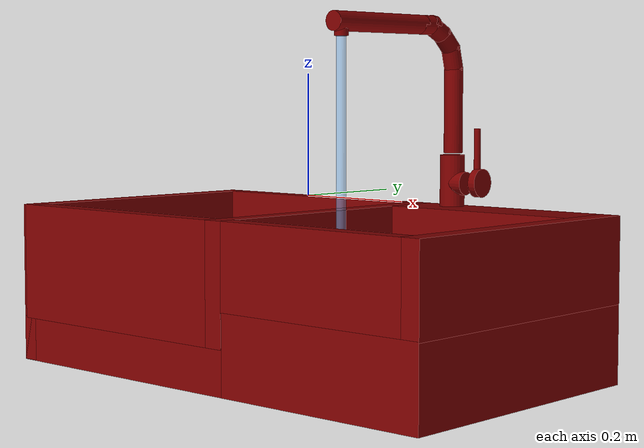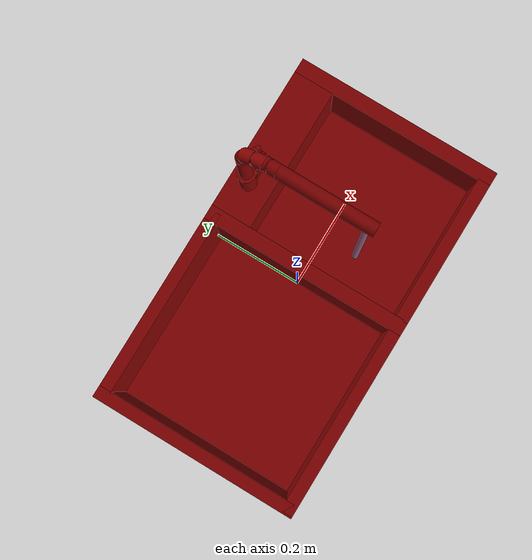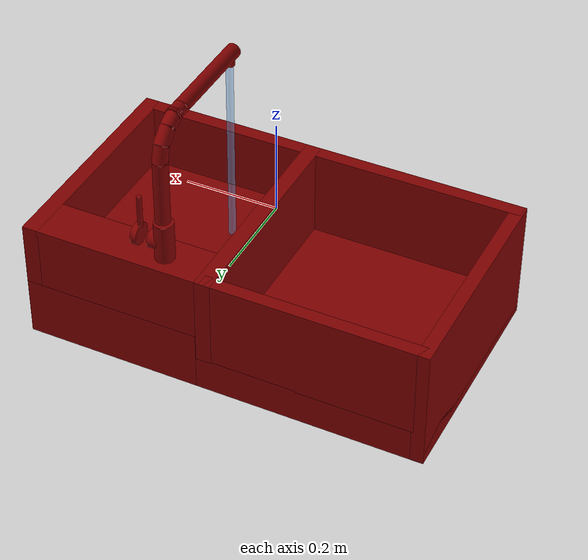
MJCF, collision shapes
<?xml version='1.0' encoding='UTF-8'?>
<mujoco model="model">
  <option timestep="0.002" gravity="0.0 0.0 -9.81"/>
  <compiler angle="radian"/>
  <asset>
    <mesh file="visuals/handle.obj" name="handle_vis"/>
    <mesh file="visuals/Body001.obj" name="Body001_vis"/>
    <mesh file="visuals/spout.obj" name="spout_vis"/>
    <texture file="visuals/T_BC001.png" name="Body001_material" type="2d"/>
    <material name="Body001_material" rgba="1 1 1 1.0" texture="Body001_material" shininess="0.1" specular="2"/>
    <texture file="visuals/T_BC001.png" name="handle_material" type="2d"/>
    <material name="handle_material" rgba="1 1 1 1.0" texture="handle_material" shininess="0.1" specular="1"/>
    <texture file="visuals/T_BC001.png" name="spout_material" type="2d"/>
    <material name="spout_material" rgba="1 1 1 1.0" texture="spout_material" shininess="0.1" specular="2"/>
  </asset>
  <default>
    <default class="visual">
      <geom conaffinity="0" contype="0" group="1" type="mesh"/>
    </default>
    <default class="collision">
      <geom group="0" rgba="0.5 0 0 0.5" solimp="0.998 0.998 0.001" solref="0.001 2"/>
    </default>
    <default class="spawn">
      <geom group="0" rgba="1 1 1 0.5" contype="0" conaffinity="0"/>
      <site group="0" rgba="1 1 1 0.5"/>
    </default>
    <default class="region">
      <geom group="1" conaffinity="0" contype="0" rgba="0 1 0 0"/>
    </default>
  </default>
  <worldbody>
    <body>
      <body name="object">
        <geom mesh="Body001_vis" type="mesh" solimp="0.998 0.998 0.001" solref="0.001 1" friction="0.95 0.3 0.1" class="visual" material="Body001_material"/>
        <geom class="collision" type="box" pos="-0.42469963 0.00000002 -0.15824787" size="0.014377672225236893 0.2513290047645569 0.13487377762794495" quat="1.0 0.0 0.0 0.0"/>
        <geom class="collision" type="box" pos="0.03584970 0.00000004 -0.12194033" size="0.017109353095293045 0.2513291835784912 0.09856623411178589" quat="1.0 0.0 0.0 0.0"/>
        <geom class="collision" type="box" pos="0.42169857 -0.00000002 -0.09409502" size="0.017378712072968483 0.25132888555526733 0.07072102278470993" quat="1.0 0.0 0.0 0.0"/>
        <geom class="collision" type="box" pos="0.24656376 -0.00000000 -0.22840064" size="0.19251343607902527 0.25132912397384644 0.06549276411533356" quat="1.0 0.0 0.0 0.0"/>
        <geom class="collision" type="box" pos="-0.19257656 -0.00000001 -0.25569155" size="0.24650071561336517 0.2513289451599121 0.03820173814892769" quat="1.0 0.0 0.0 0.0"/>
        <geom class="collision" type="box" pos="-0.19629988 0.23687601 -0.12194034" size="0.23859663307666779 0.014452969655394554 0.0985662192106247" quat="1.0 0.0 0.0 0.0"/>
        <geom class="collision" type="box" pos="-0.19629988 -0.23660257 -0.12194034" size="0.23859667778015137 0.014726434834301472 0.0985662192106247" quat="1.0 0.0 0.0 0.0"/>
        <geom class="collision" type="box" pos="0.22849280 -0.23603772 -0.09409488" size="0.17905189096927643 0.015291204676032066 0.07072082906961441" quat="1.0 0.0 0.0 0.0"/>
        <geom class="collision" type="box" pos="0.22849280 0.20195697 -0.09367996" size="0.17905189096927643 0.0493718758225441 0.07030582427978516" quat="1.0 0.0 0.0 0.0"/>
        <geom class="collision" type="cylinder" pos="0.13745365 0.20949830 0.02130605" size="0.020850198343396187 0.04329083487391472" quat="1.0 0.0 0.0 0.0"/>
        <geom class="collision" type="cylinder" pos="0.15164700 0.20949830 0.01718072" size="0.019538551568984985 0.015080406330525875" quat="0.70710688829422 -4.7503021960437763e-08 0.7071066498756409 4.750300774958305e-08"/>
        <body name="handle">
          <joint axis="1.0 0.0 0.0" pos="0.17682892 0.20986205 0.01904637" limited="true" name="handle_temp_joint" type="hinge" range="-0.7853981633974483 0.7853981633974483" damping="0.5" frictionloss="1" armature="2"/>
          <joint axis="0.0 1.0 0.0" pos="0.17682892 0.20986205 0.01904637" limited="true" name="handle_joint" type="hinge" range="0 0.5" damping="0.5" frictionloss="1" armature="2"/>
          <geom mesh="handle_vis" type="mesh" solimp="0.998 0.998 0.001" solref="0.001 1" friction="0.95 0.3 0.1" class="visual" material="handle_material"/>
          <geom class="collision" type="cylinder" pos="0.19415432 0.20986205 0.01904646" size="0.023732485249638557 0.006439584773033857" quat="1.3767879636361613e-07 0.70710688829422 1.3767875373105198e-07 -0.7071066498756409"/>
          <geom name="handle_main" class="collision" type="cylinder" pos="0.18925682 0.20986205 0.07404423" size="0.005598940420895815 0.03571911156177521" quat="7.549793679118011e-08 1.0 1.9470721213110664e-07 -1.9470718370939721e-07"/>
        </body>
        <body name="spout">
          <joint axis="0.0 0.0 1.0" pos="0.13795607 0.20856512 0.17673314" limited="true" name="spout_joint" range="-1.0471975511965976 1.0471975511965976" type="hinge" damping="10"/>
          <site type="cylinder" rgba="0.5 0.75 1 0.5" size="0.007777536287903786 0.26257792115211487" pos="0.13854562 -0.07310878 -0.00310848" name="water"/>
          <geom mesh="spout_vis" type="mesh" solimp="0.998 0.998 0.001" solref="0.001 1" friction="0.95 0.3 0.1" class="visual" material="spout_material"/>
          <geom class="collision" type="cylinder" pos="0.13854562 0.20985766 0.13935142" size="0.015804527327418327 0.07127916067838669" quat="1.0 0.0 0.0 0.0"/>
          <geom class="collision" type="cylinder" pos="0.13854562 0.01769771 0.28025801" size="0.015804527327418327 0.10919349640607834" quat="0.7071068286895752 0.7071067690849304 -1.5700922994638892e-16 -1.528541381711287e-23" name="spout_main"/>
          <geom class="collision" type="cylinder" pos="0.13854562 -0.07302831 0.26639230" size="0.011412599124014378 0.008912387304008007" quat="7.549790126404332e-08 1.0 -2.220446049250313e-16 -1.7645063234279917e-24"/>
          <geom class="collision" type="cylinder" pos="0.13854562 0.20557772 0.22587613" size="0.015804527327418327 0.020363805815577507" quat="0.9921587109565735 0.12498420476913452 -2.775201377591126e-17 -8.607998132951936e-24"/>
          <geom class="collision" type="cylinder" pos="0.13854562 0.18946247 0.25417853" size="0.015804527327418327 0.020363805815577507" quat="0.9194023609161377 0.3933183252811432 -8.733419891193659e-17 7.110583151522317e-24"/>
          <geom class="collision" type="cylinder" pos="0.13854562 0.16134135 0.27373842" size="0.015804527327418327 0.020363805815577507" quat="0.8493955731391907 0.5277566909790039 -1.1718551271008496e-16 7.803923256312832e-24"/>
          <geom class="collision" type="cylinder" pos="0.13854562 0.13716848 0.28018451" size="0.015804527327418327 0.020363805815577507" quat="0.7066156268119812 0.7075976133346558 -1.571181927941193e-16 8.88234975629151e-24"/>
        </body>
        <geom class="region" name="reg_basin_left" type="box" pos="-0.196434895 -0.0014712350000000013 -0.11989667999999999" size="0.20930323499999998 0.215819985 0.09247646"/>
        <geom class="region" name="reg_basin_right" type="box" pos="0.22923865 -0.035027375 -0.09328452" size="0.17035662000000001 0.180820845 0.06472678999999999"/>
        <geom class="region" name="reg_main" type="box" pos="-9.999999994736442e-09 0.0 -0.15863375999999998" size="0.44007729 0.25232895 0.1362596"/>
      </body>
    </body>
  </worldbody>
  <actuator>
    <motor name="handle_joint_actuator" joint="handle_joint" gear="10"/>
    <motor name="handle_temp_joint_actuator" joint="handle_temp_joint" gear="10"/>
    <motor name="spout_joint_actuator" joint="spout_joint" gear="10"/>
  </actuator>
</mujoco>
